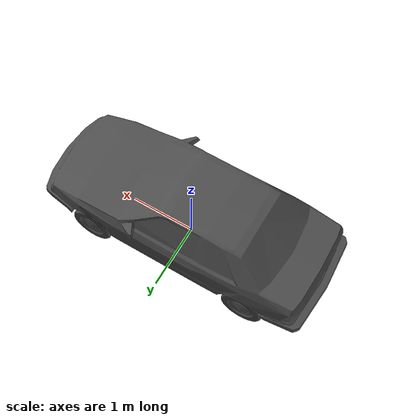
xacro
<?xml version="1.0"?>

<robot name="$(arg name)" xmlns:xacro="http://www.ros.org/wiki/xacro">

  <xacro:include filename="$(find iri_objects_description)/urdf/materials.xacro" />
  <xacro:include filename="$(find iri_objects_description)/urdf/car/urdf.xacro" />
  <xacro:include filename="$(find iri_objects_description)/urdf/car/gazebo.gazebo" />
  <xacro:car_gazebo car_name="$(arg name)"/>

</robot>

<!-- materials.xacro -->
<root xmlns:xacro="http://ros.org/wiki/xacro">
  <material name="black">
    <color rgba="0.15 0.15 0.15 1.0"/>
  </material>

  <material name="blue">
    <color rgba="0.17 0.3 0.56 1.0"/>
  </material>

  <material name="orange">
    <color rgba="0.93 0.44 0.01 1.0"/>
  </material>

  <material name="green">
    <color rgba="0.0 0.8 0.0 1.0"/>
  </material>

  <material name="grey">
    <color rgba="0.3 0.3 0.3 1.0"/>
  </material>

  <material name="grey2">
    <color rgba="0.7 0.7 0.7 1.0"/>
  </material>

  <material name="grey3">
    <color rgba="0.9 0.9 0.9 1.0"/>
  </material>

  <material name="red">
    <color rgba="0.8 0.0 0.0 1.0"/>
  </material>

  <material name="white">
    <color rgba="0.9 0.9 0.9 1.0"/>
  </material>
</root>

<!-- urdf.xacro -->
<root xmlns:xacro="http://ros.org/wiki/xacro">

  <xacro:property name="M_PI" value="3.1415926535897931" />

    <link name="base_footprint"/>

    <link name="base_link">
      <inertial>
        <mass value="1" />
        <origin xyz="0 0 0" />
        <inertia
          ixx="1.0" ixy="0.0" ixz="0.0"
          iyy="1.0" iyz="0.0"
          izz="1.0" />
       </inertial>
    </link>

    <joint name="base_footprint_to_base_link" type="fixed">
      <parent link="base_footprint"/>
      <child link="base_link"/>
      <origin xyz="0 0 0.0" rpy="0 0 0"/>
    </joint>

    <link name="body">
      <collision>
        <origin xyz="0 0 0" rpy="0 0 0"/>
        <geometry>
          <mesh filename="package://iri_objects_description/meshes/car.stl"/>
        </geometry>
        <surface>
          <friction>
            <ode>
              <mu>0.0</mu>
              <mu2>0.0</mu2>
            </ode>
          </friction>
        </surface>
      </collision>
      <visual>
        <origin xyz="0 0 0" rpy="0 0 0"/>
        <geometry>
          <mesh filename="package://iri_objects_description/meshes/car.stl"/>
        </geometry>
        <material name="grey"/>
      </visual>
    </link>

    <joint name="base_link_to_body" type="fixed">
      <parent link="base_link"/>
      <child link="body"/>
      <origin xyz="0 0 0.0" rpy="0 0 0"/>
    </joint>

    <link name="top"/>

    <joint name="base_link_to_top" type="fixed">
      <parent link="base_link"/>
      <child link="top"/>
      <origin xyz="0 0 1.4" rpy="0 0 0"/>
    </joint>

    <link name="front"/>

    <joint name="base_link_to_front" type="fixed">
      <parent link="base_link"/>
      <child link="front"/>
      <origin xyz="2.1 0 0.7" rpy="0 0 0"/>
    </joint>

    <link name="back"/>

    <joint name="base_link_to_back" type="fixed">
      <parent link="base_link"/>
      <child link="back"/>
      <origin xyz="-2.1 0 0.7" rpy="0 0 ${M_PI}"/>
    </joint>

</root>
